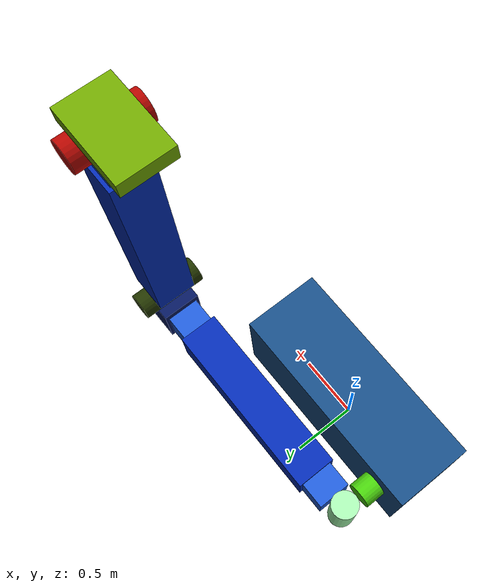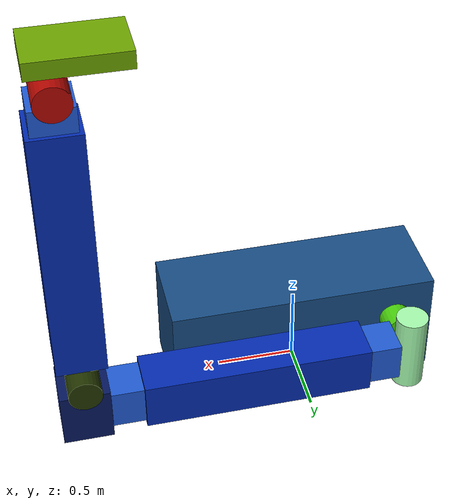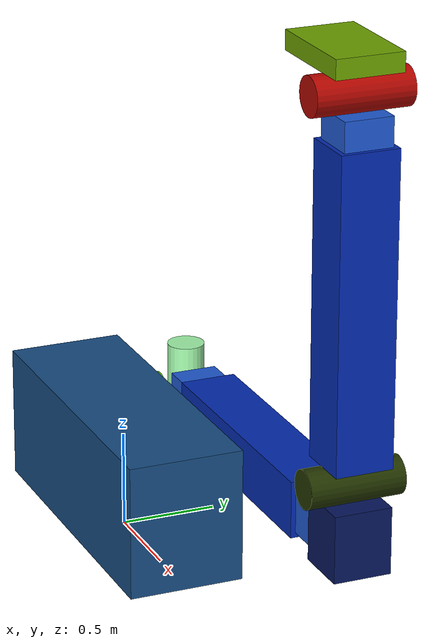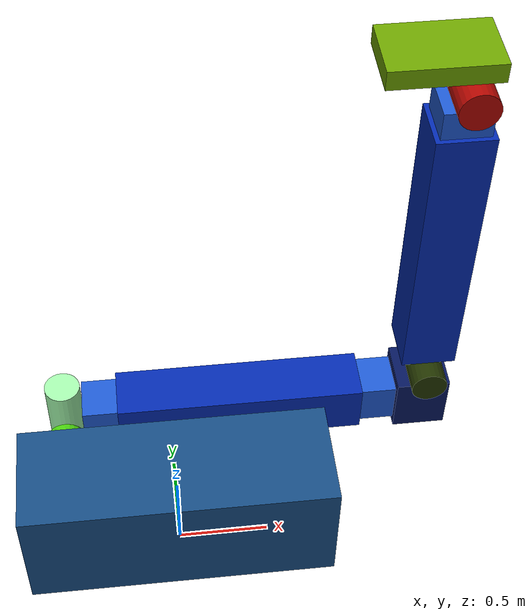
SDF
<sdf version="1.8">
<world name="arm_simulation">
<model name="robot" canonical_link='base_footprint'>
  <static>false</static>
  <pose relative_to='world'>0 0 0 0 0 0</pose>
  <link name="base_footprint"></link>
  <link name="base_link">
    <pose relative_to='base_footprint'>0 0 0.35 0 0 0</pose>
    <visual name='base_link visual'>
      <pose>0 0 0 0 0 0</pose>
      <geometry>
        <box>
          <size>1.7 0.6 0.7</size>
        </box>
      </geometry>
      <material>
         <ambient>0.08650046202808521 0.29613827078752575 0.508881320845802 1</ambient>
         <diffuse>0.08650046202808521 0.29613827078752575 0.508881320845802 1</diffuse>
         <specular>0.1 0.1 0.1 1</specular>
         <emissive>0 0 0 1</emissive>
       </material>
    </visual>
    <collision name='base_link collision'>
      <pose>0 0 0 0 0 0</pose>
      <geometry>
        <box>
          <size>1.7 0.6 0.7</size>
        </box>
      </geometry>
    </collision>
    <inertial>
      <mass>1</mass>
      <inertia>
        <ixx>0.16666666666666666</ixx>
        <ixy>0</ixy>
        <ixz>0</ixz>
        <iyy>0.16666666666666666</iyy>
        <iyz>0</iyz>
        <izz>0.16666666666666666</izz>
      </inertia>
    </inertial>
  </link>
  <joint name="base_footprint_to_base_link" type="fixed">
    <pose relative_to='base_link'>0 0 0 0 0 0 </pose>
    <parent>base_footprint</parent>
    <child>base_link</child>
  </joint>
  <joint name="base_footprint_fixed" type="fixed">
    <parent>world</parent>
    <child>base_footprint</child>
  </joint>
  <link name="servo1">
    <pose relative_to='base_link'>-0.600370156138188 0.2 0.1 1.5707963267948963 0 0</pose>
    <visual name='servo1 visual'>
      <pose>0 0 0 0 0 0</pose>
      <geometry>
        <cylinder>
          <radius>0.1</radius>
          <length>0.5</length>
        </cylinder>
      </geometry>
      <material>
         <ambient>0.2788942634659966 0.7991027380100881 0.04666508633021928 1</ambient>
         <diffuse>0.2788942634659966 0.7991027380100881 0.04666508633021928 1</diffuse>
         <specular>0.1 0.1 0.1 1</specular>
         <emissive>0 0 0 1</emissive>
       </material>
    </visual>
    <collision name='servo1 collision'>
      <pose>0 0 0 0 0 0</pose>
      <geometry>
        <cylinder>
          <radius>0.1</radius>
          <length>0.5</length>
        </cylinder>
      </geometry>
    </collision>
    <inertial>
      <mass>1</mass>
      <inertia>
        <ixx>0.3333333333333333</ixx>
        <ixy>0</ixy>
        <ixz>0</ixz>
        <iyy>0.5</iyy>
        <iyz>0</iyz>
        <izz>0.3333333333333333</izz>
      </inertia>
    </inertial>
  </link>
  <joint name="base_link_to_servo1" type="revolute">
    <pose relative_to='servo1'>0 0 0 0 0 0 </pose>
    <parent>base_link</parent>
    <child>servo1</child>
    <axis>
        <xyz expressed_in='servo1'>0 0 1</xyz>
        <limit>            <lower>-1</lower>            <upper>1</upper>        </limit>
    </axis>
  </joint>
  <link name="servo2">
    <pose relative_to='servo1'>0 -6.938893903907228e-18 -0.3990655049684929 -1.5707963267948963 0 0</pose>
    <visual name='servo2 visual'>
      <pose>0 0 0 0 0 0</pose>
      <geometry>
        <cylinder>
          <radius>0.1</radius>
          <length>0.5</length>
        </cylinder>
      </geometry>
      <material>
         <ambient>0.6375968739867731 0.9734452903978066 0.6724431569510133 1</ambient>
         <diffuse>0.6375968739867731 0.9734452903978066 0.6724431569510133 1</diffuse>
         <specular>0.1 0.1 0.1 1</specular>
         <emissive>0 0 0 1</emissive>
       </material>
    </visual>
    <collision name='servo2 collision'>
      <pose>0 0 0 0 0 0</pose>
      <geometry>
        <cylinder>
          <radius>0.1</radius>
          <length>0.5</length>
        </cylinder>
      </geometry>
    </collision>
    <inertial>
      <mass>1</mass>
      <inertia>
        <ixx>0.3333333333333333</ixx>
        <ixy>0</ixy>
        <ixz>0</ixz>
        <iyy>0.5</iyy>
        <iyz>0</iyz>
        <izz>0.3333333333333333</izz>
      </inertia>
    </inertial>
  </link>
  <joint name="servo1_to_servo2" type="revolute">
    <pose relative_to='servo2'>0 0 0 0 0 0 </pose>
    <parent>servo1</parent>
    <child>servo2</child>
    <axis>
        <xyz expressed_in='servo2'>0 0 1</xyz>
        <limit>            <lower>-1</lower>            <upper>1</upper>        </limit>
    </axis>
  </joint>
  <link name="link1">
    <pose relative_to='servo2'>1 0 0.004902921815183203 0 0 0</pose>
    <visual name='link1 visual'>
      <pose>0 0 0 0 0 0</pose>
      <geometry>
        <box>
          <size>1.4 0.3 0.3</size>
        </box>
      </geometry>
      <material>
         <ambient>0.011612245176281512 0.16513219449147767 0.6866853124288864 1</ambient>
         <diffuse>0.011612245176281512 0.16513219449147767 0.6866853124288864 1</diffuse>
         <specular>0.1 0.1 0.1 1</specular>
         <emissive>0 0 0 1</emissive>
       </material>
    </visual>
    <collision name='link1 collision'>
      <pose>0 0 0 0 0 0</pose>
      <geometry>
        <box>
          <size>1.4 0.3 0.3</size>
        </box>
      </geometry>
    </collision>
    <inertial>
      <mass>1</mass>
      <inertia>
        <ixx>0.16666666666666666</ixx>
        <ixy>0</ixy>
        <ixz>0</ixz>
        <iyy>0.16666666666666666</iyy>
        <iyz>0</iyz>
        <izz>0.16666666666666666</izz>
      </inertia>
    </inertial>
  </link>
  <joint name="servo2_to_link1" type="fixed">
    <pose relative_to='link1'>0 0 0 0 0 0 </pose>
    <parent>servo2</parent>
    <child>link1</child>
  </joint>
  <link name="link1_inner">
    <pose relative_to='link1'>0 0 0 0 1.5707963267948966 0</pose>
    <visual name='link1_inner visual'>
      <pose>0 0 0 0 0 0</pose>
      <geometry>
        <box>
          <size>0.25 0.25 1.8</size>
        </box>
      </geometry>
      <material>
         <ambient>0.12213877222015301 0.3515325994898463 0.8227857543924378 1</ambient>
         <diffuse>0.12213877222015301 0.3515325994898463 0.8227857543924378 1</diffuse>
         <specular>0.1 0.1 0.1 1</specular>
         <emissive>0 0 0 1</emissive>
       </material>
    </visual>
    <collision name='link1_inner collision'>
      <pose>0 0 0 0 0 0</pose>
      <geometry>
        <box>
          <size>0.25 0.25 1.8</size>
        </box>
      </geometry>
    </collision>
    <inertial>
      <mass>1</mass>
      <inertia>
        <ixx>0.16666666666666666</ixx>
        <ixy>0</ixy>
        <ixz>0</ixz>
        <iyy>0.16666666666666666</iyy>
        <iyz>0</iyz>
        <izz>0.16666666666666666</izz>
      </inertia>
    </inertial>
  </link>
  <joint name="link1_to_link1_inner" type="prismatic">
    <pose relative_to='link1_inner'>0 0 0 0 0 0 </pose>
    <parent>link1</parent>
    <child>link1_inner</child>
    <axis>
        <xyz expressed_in='link1_inner'>0 0 1</xyz>
    </axis>
  </joint>
  <link name="EndLink1">
    <pose relative_to='link1_inner'>-2.220446049250313e-16 0 1.052316053538345 0 -1.5707963267948966 0</pose>
    <visual name='EndLink1 visual'>
      <pose>0 0 0 0 0 0</pose>
      <geometry>
        <box>
          <size>0.3 0.3 0.35</size>
        </box>
      </geometry>
      <material>
         <ambient>0.02028856305209031 0.08650046202808521 0.36130677977297226 1</ambient>
         <diffuse>0.02028856305209031 0.08650046202808521 0.36130677977297226 1</diffuse>
         <specular>0.1 0.1 0.1 1</specular>
         <emissive>0 0 0 1</emissive>
       </material>
    </visual>
    <collision name='EndLink1 collision'>
      <pose>0 0 0 0 0 0</pose>
      <geometry>
        <box>
          <size>0.3 0.3 0.35</size>
        </box>
      </geometry>
    </collision>
    <inertial>
      <mass>1</mass>
      <inertia>
        <ixx>0.16666666666666666</ixx>
        <ixy>0</ixy>
        <ixz>0</ixz>
        <iyy>0.16666666666666666</iyy>
        <iyz>0</iyz>
        <izz>0.16666666666666666</izz>
      </inertia>
    </inertial>
  </link>
  <joint name="link1_inner_to_EndLink1" type="fixed">
    <pose relative_to='EndLink1'>0 0 0 0 0 0 </pose>
    <parent>link1_inner</parent>
    <child>EndLink1</child>
  </joint>
  <link name="servo3">
    <pose relative_to='EndLink1'>0 0 0.275 1.5707963267948963 0 0</pose>
    <visual name='servo3 visual'>
      <pose>0 0 0 0 0 0</pose>
      <geometry>
        <cylinder>
          <radius>0.1</radius>
          <length>0.5</length>
        </cylinder>
      </geometry>
      <material>
         <ambient>0.13286832154414627 0.20507873637973145 0.0033465357620980074 1</ambient>
         <diffuse>0.13286832154414627 0.20507873637973145 0.0033465357620980074 1</diffuse>
         <specular>0.1 0.1 0.1 1</specular>
         <emissive>0 0 0 1</emissive>
       </material>
    </visual>
    <collision name='servo3 collision'>
      <pose>0 0 0 0 0 0</pose>
      <geometry>
        <cylinder>
          <radius>0.1</radius>
          <length>0.5</length>
        </cylinder>
      </geometry>
    </collision>
    <inertial>
      <mass>1</mass>
      <inertia>
        <ixx>0.3333333333333333</ixx>
        <ixy>0</ixy>
        <ixz>0</ixz>
        <iyy>0.5</iyy>
        <iyz>0</iyz>
        <izz>0.3333333333333333</izz>
      </inertia>
    </inertial>
  </link>
  <joint name="EndLink1_to_servo3" type="revolute">
    <pose relative_to='servo3'>0 0 0 0 0 0 </pose>
    <parent>EndLink1</parent>
    <child>servo3</child>
    <axis>
        <xyz expressed_in='servo3'>0 0 1</xyz>
        <limit>            <lower>-1</lower>            <upper>1</upper>        </limit>
    </axis>
  </joint>
  <link name="link2">
    <pose relative_to='servo3'>0 0.9 0 -1.5707963267948963 0 0</pose>
    <visual name='link2 visual'>
      <pose>0 0 0 0 0 0</pose>
      <geometry>
        <box>
          <size>0.3 0.3 1.6</size>
        </box>
      </geometry>
      <material>
         <ambient>0.011612245176281512 0.16513219449147767 0.6866853124288864 1</ambient>
         <diffuse>0.011612245176281512 0.16513219449147767 0.6866853124288864 1</diffuse>
         <specular>0.1 0.1 0.1 1</specular>
         <emissive>0 0 0 1</emissive>
       </material>
    </visual>
    <collision name='link2 collision'>
      <pose>0 0 0 0 0 0</pose>
      <geometry>
        <box>
          <size>0.3 0.3 1.6</size>
        </box>
      </geometry>
    </collision>
    <inertial>
      <mass>1</mass>
      <inertia>
        <ixx>0.16666666666666666</ixx>
        <ixy>0</ixy>
        <ixz>0</ixz>
        <iyy>0.16666666666666666</iyy>
        <iyz>0</iyz>
        <izz>0.16666666666666666</izz>
      </inertia>
    </inertial>
  </link>
  <joint name="servo3_to_link2" type="fixed">
    <pose relative_to='link2'>0 0 0 0 0 0 </pose>
    <parent>servo3</parent>
    <child>link2</child>
  </joint>
  <link name="link2_inner">
    <pose relative_to='link2'>0 0 0.45 0 0 0</pose>
    <visual name='link2_inner visual'>
      <pose>0 0 0 0 0 0</pose>
      <geometry>
        <box>
          <size>0.25 0.25 1</size>
        </box>
      </geometry>
      <material>
         <ambient>0.12213877222015301 0.3515325994898463 0.8227857543924378 1</ambient>
         <diffuse>0.12213877222015301 0.3515325994898463 0.8227857543924378 1</diffuse>
         <specular>0.1 0.1 0.1 1</specular>
         <emissive>0 0 0 1</emissive>
       </material>
    </visual>
    <collision name='link2_inner collision'>
      <pose>0 0 0 0 0 0</pose>
      <geometry>
        <box>
          <size>0.25 0.25 1</size>
        </box>
      </geometry>
    </collision>
    <inertial>
      <mass>1</mass>
      <inertia>
        <ixx>0.16666666666666666</ixx>
        <ixy>0</ixy>
        <ixz>0</ixz>
        <iyy>0.16666666666666666</iyy>
        <iyz>0</iyz>
        <izz>0.16666666666666666</izz>
      </inertia>
    </inertial>
  </link>
  <joint name="link2_to_link2_inner" type="prismatic">
    <pose relative_to='link2_inner'>0 0 0 0 0 0 </pose>
    <parent>link2</parent>
    <child>link2_inner</child>
    <axis>
        <xyz expressed_in='link2_inner'>0 0 1</xyz>
    </axis>
  </joint>
  <link name="servo4">
    <pose relative_to='link2_inner'>0 0 0.6 1.5707963267948963 0 0</pose>
    <visual name='servo4 visual'>
      <pose>0 0 0 0 0 0</pose>
      <geometry>
        <cylinder>
          <radius>0.1</radius>
          <length>0.5</length>
        </cylinder>
      </geometry>
      <material>
         <ambient>0.6938717612856897 0.024157632443547246 0.0018211619011764706 1</ambient>
         <diffuse>0.6938717612856897 0.024157632443547246 0.0018211619011764706 1</diffuse>
         <specular>0.1 0.1 0.1 1</specular>
         <emissive>0 0 0 1</emissive>
       </material>
    </visual>
    <collision name='servo4 collision'>
      <pose>0 0 0 0 0 0</pose>
      <geometry>
        <cylinder>
          <radius>0.1</radius>
          <length>0.5</length>
        </cylinder>
      </geometry>
    </collision>
    <inertial>
      <mass>1</mass>
      <inertia>
        <ixx>0.3333333333333333</ixx>
        <ixy>0</ixy>
        <ixz>0</ixz>
        <iyy>0.5</iyy>
        <iyz>0</iyz>
        <izz>0.3333333333333333</izz>
      </inertia>
    </inertial>
  </link>
  <joint name="link2_inner_to_servo4" type="revolute">
    <pose relative_to='servo4'>0 0 0 0 0 0 </pose>
    <parent>link2_inner</parent>
    <child>servo4</child>
    <axis>
        <xyz expressed_in='servo4'>0 0 1</xyz>
        <limit>            <lower>-1</lower>            <upper>1</upper>        </limit>
    </axis>
  </joint>
  <link name="writsplate">
    <pose relative_to='servo4'>-0.15 0.14978240822898492 2.7755575615628914e-17 -1.5707963267948963 0 0</pose>
    <visual name='writsplate visual'>
      <pose>0 0 0 0 0 0</pose>
      <geometry>
        <box>
          <size>0.55 0.35 0.1</size>
        </box>
      </geometry>
      <material>
         <ambient>0.4286904966038916 0.6375968739867731 0.001214107934117647 1</ambient>
         <diffuse>0.4286904966038916 0.6375968739867731 0.001214107934117647 1</diffuse>
         <specular>0.1 0.1 0.1 1</specular>
         <emissive>0 0 0 1</emissive>
       </material>
    </visual>
    <collision name='writsplate collision'>
      <pose>0 0 0 0 0 0</pose>
      <geometry>
        <box>
          <size>0.35 0.35 0.1</size>
        </box>
      </geometry>
    </collision>
    <inertial>
      <mass>1</mass>
      <inertia>
        <ixx>0.16666666666666666</ixx>
        <ixy>0</ixy>
        <ixz>0</ixz>
        <iyy>0.16666666666666666</iyy>
        <iyz>0</iyz>
        <izz>0.16666666666666666</izz>
      </inertia>
    </inertial>
  </link>
  <joint name="servo4_to_writsplate" type="fixed">
    <pose relative_to='writsplate'>0 0 0 0 0 0 </pose>
    <parent>servo4</parent>
    <child>writsplate</child>
  </joint>
    <plugin filename="gz-sim-joint-state-publisher-system" name="gz::sim::systems::JointStatePublisher">
      <update_rate>50</update_rate>
    </plugin>
    <plugin filename="gz-sim-joint-position-controller-system" name="gz::sim::systems::JointPositionController">
      <joint_name>base_link_to_servo1</joint_name>
      <topic>servo1_cmd</topic>
      <p_gain>10</p_gain>
      <i_gain>0.1</i_gain>
      <d_gain>0.5</d_gain>
    </plugin>
    <plugin filename="gz-sim-joint-position-controller-system" name="gz::sim::systems::JointPositionController">
      <joint_name>servo1_to_servo2</joint_name>
      <topic>servo2_cmd</topic>
      <p_gain>10</p_gain>
      <i_gain>0.1</i_gain>
      <d_gain>0.5</d_gain>
    </plugin>
    <plugin filename="gz-sim-joint-position-controller-system" name="gz::sim::systems::JointPositionController">
      <joint_name>EndLink1_to_servo3</joint_name>
      <topic>servo3_cmd</topic>
      <p_gain>10</p_gain>
      <i_gain>0.1</i_gain>
      <d_gain>0.5</d_gain>
    </plugin>
    <plugin filename="gz-sim-joint-position-controller-system" name="gz::sim::systems::JointPositionController">
      <joint_name>link2_inner_to_servo4</joint_name>
      <topic>servo4_cmd</topic>
      <p_gain>10</p_gain>
      <i_gain>0.1</i_gain>
      <d_gain>0.5</d_gain>
    </plugin>
    <plugin filename="gz-sim-joint-position-controller-system" name="gz::sim::systems::JointPositionController">
      <joint_name>link1_to_link1_inner</joint_name>
      <topic>prismatic1_cmd</topic>
      <p_gain>10</p_gain>
      <i_gain>0.1</i_gain>
      <d_gain>0.5</d_gain>
    </plugin>
    <plugin filename="gz-sim-joint-position-controller-system" name="gz::sim::systems::JointPositionController">
      <joint_name>link2_to_link2_inner</joint_name>
      <topic>prismatic2_cmd</topic>
      <p_gain>10</p_gain>
      <i_gain>0.1</i_gain>
      <d_gain>0.5</d_gain>
    </plugin>
</model>
</world>
</sdf>
